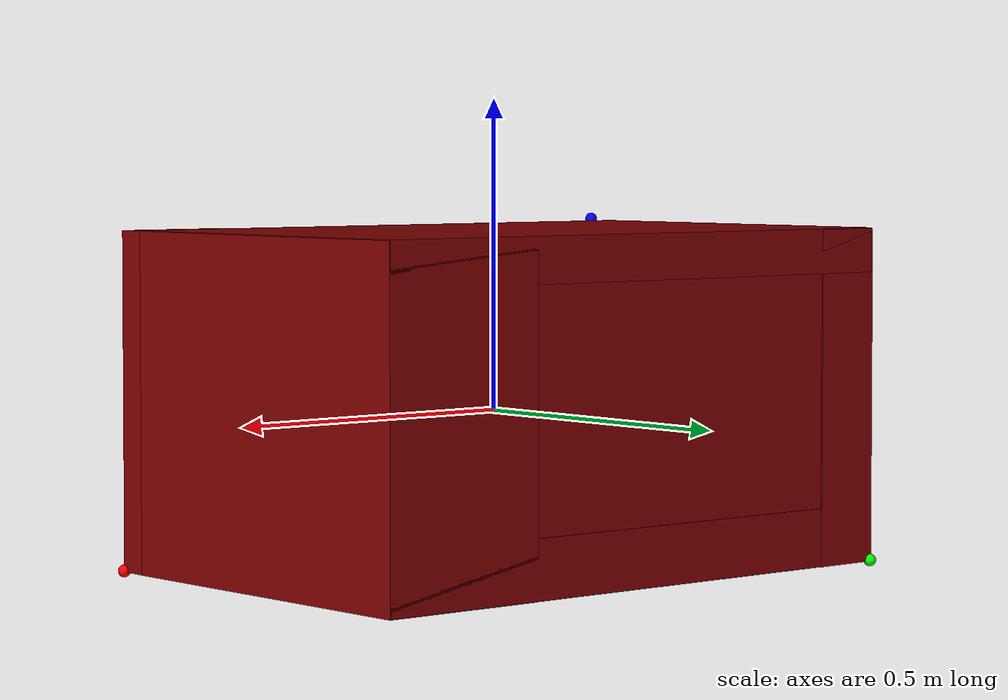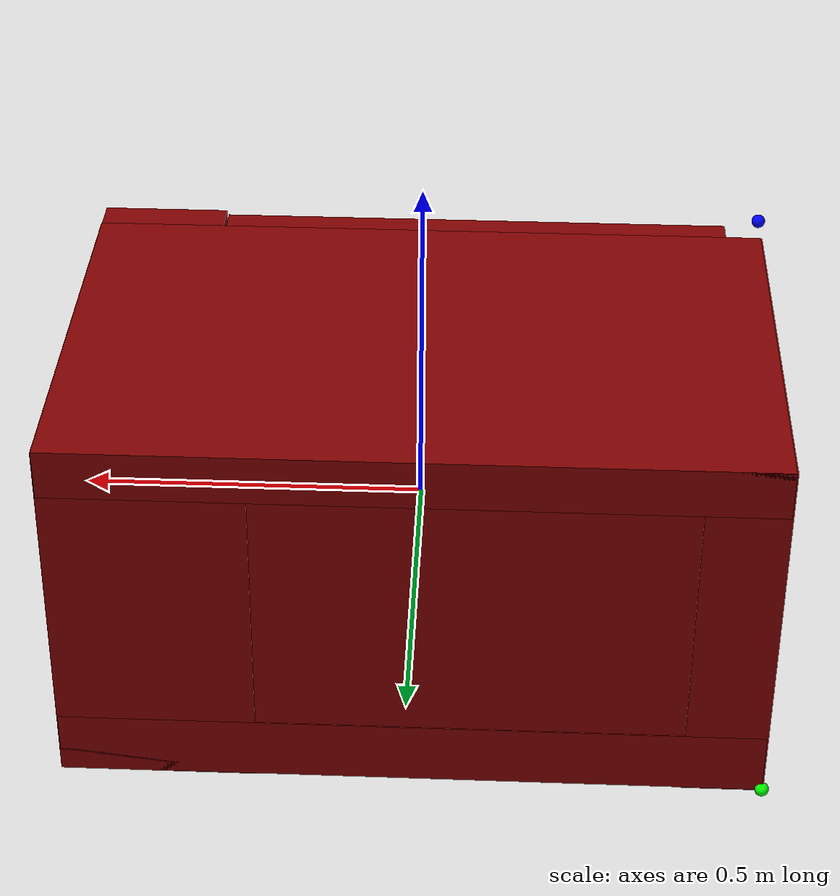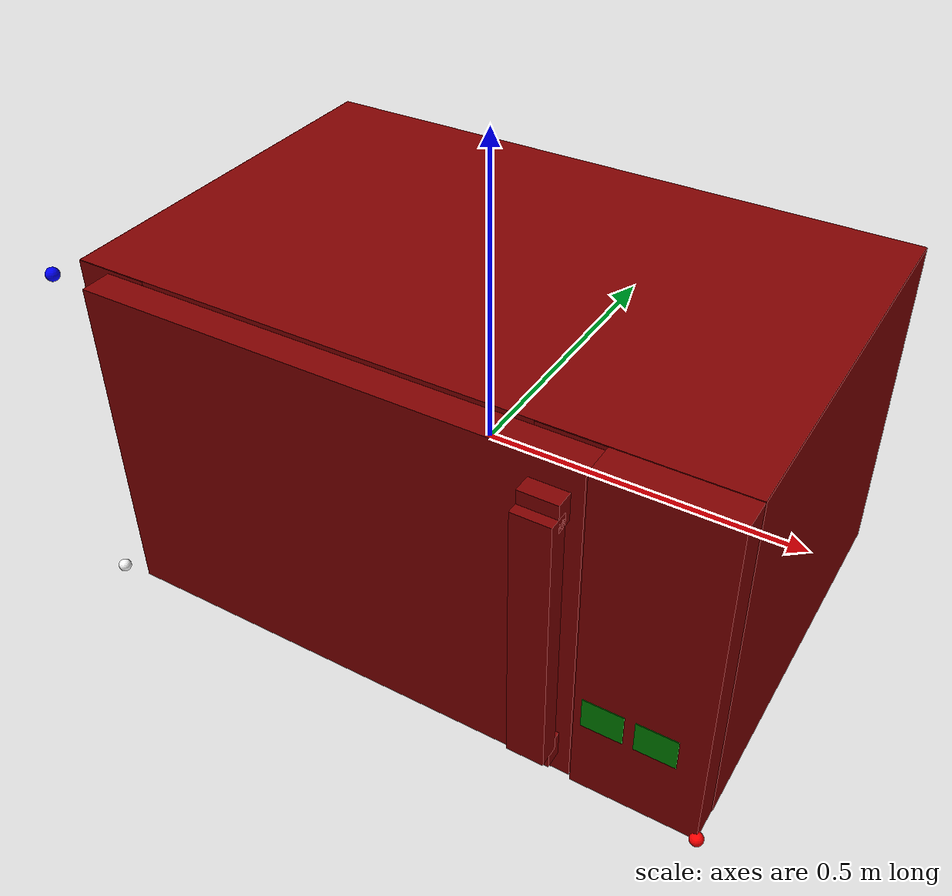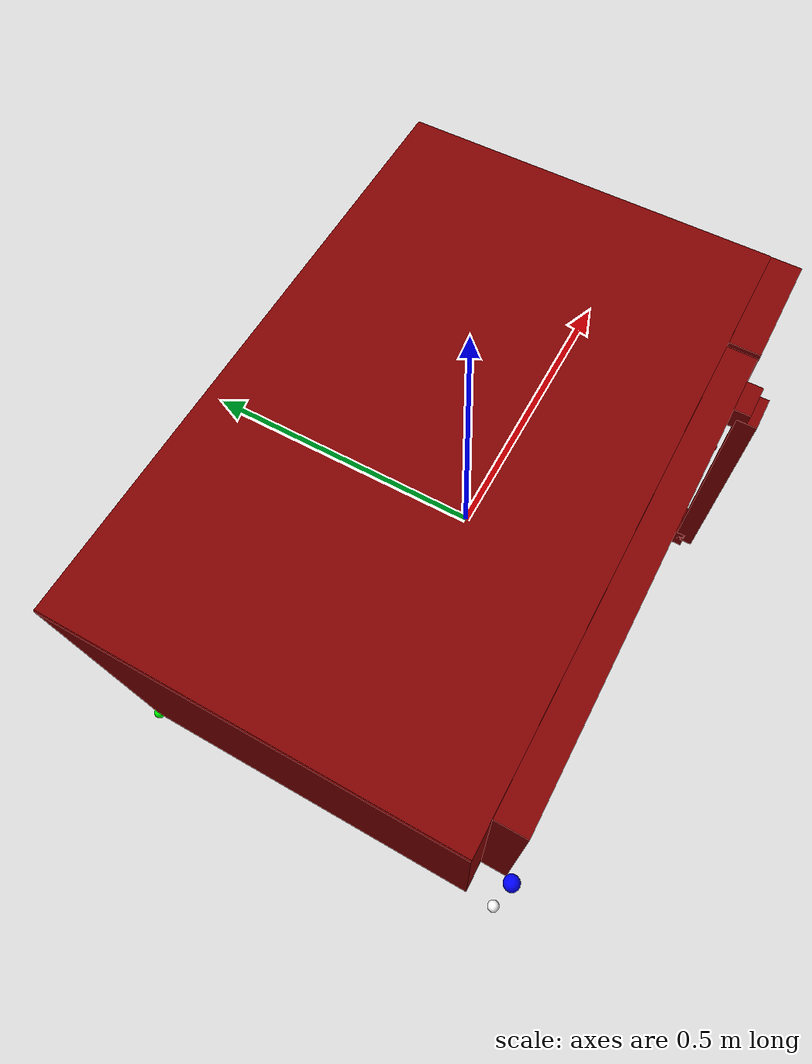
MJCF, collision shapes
<mujoco model="model">
  <compiler angle="radian"/>
  <asset>
    <texture type="2d" name="image0" file="visuals/image0.png"/>
    <texture type="2d" name="image2" file="visuals/image2.png"/>
    <texture type="2d" name="image4" file="visuals/image4.png"/>
    <texture type="2d" name="image3" file="visuals/image3.png"/>
    <material name="Back" texture="image0" specular="0.5" shininess="0.25"/>
    <material name="Body" specular="0.5" shininess="0.618999084" rgba="0.157434 0.157434 0.157434 1.000000"/>
    <material name="Body.001" texture="image2" specular="0.5" shininess="0.618999084"/>
    <material name="Front_Metal_Frame" texture="image4" specular="0.5" shininess="0.25"/>
    <material name="Glass" specular="0.5" shininess="0.0" rgba="1.000000 1.000000 1.000000 0.250000"/>
    <material name="Hold" specular="0.5" shininess="0.25" rgba="0.000000 0.000000 0.000000 1.000000"/>
    <material name="Inside_Metal" specular="0.5" shininess="0.25" rgba="0.800000 0.800000 0.800000 1.000000"/>
    <material name="NumPad" texture="image3" specular="0.5" shininess="0.393471375"/>
    <material name="NumPad_-_light_up" texture="image3" specular="0.5" shininess="0.36"/>
    <material name="Rubber_Legs" specular="0.5" shininess="0.10948291" rgba="0.000000 0.000000 0.000000 1.000000"/>
    <material name="Transp" specular="0.5" shininess="0.25" rgba="0.800000 0.800000 0.800000 0.250000"/>
    <mesh file="visuals/model_0.obj" name="model_0_vis" scale="1 1 1"/>
    <mesh file="visuals/model_1.obj" name="model_1_vis" scale="1 1 1"/>
    <mesh file="visuals/model_2.obj" name="model_2_vis" scale="1 1 1"/>
    <mesh file="visuals/model_3.obj" name="model_3_vis" scale="1 1 1"/>
    <mesh file="visuals/model_4.obj" name="model_4_vis" scale="1 1 1"/>
    <mesh file="visuals/model_5.obj" name="model_5_vis" scale="1 1 1"/>
    <mesh file="visuals/model_6.obj" name="model_6_vis" scale="1 1 1"/>
    <mesh file="visuals/model_7.obj" name="model_7_vis" scale="1 1 1"/>
    <mesh file="visuals/model_8.obj" name="model_8_vis" scale="1 1 1"/>
    <mesh file="visuals/model_9.obj" name="model_9_vis" scale="1 1 1"/>
    <mesh file="visuals/model_10.obj" name="model_10_vis" scale="1 1 1"/>
    <material name="Door_Glass" specular="0.5" shininess="1.0" rgba="0.200000 0.200000 0.200000 0.80000"/>
    <material name="Door_wire" specular="0.5" shininess="0.152312714" rgba="0.800000 0.800000 0.800000 0.2"/>
    <mesh file="visuals/door_0.obj" name="door_0_vis" scale="1 1 1"/>
    <mesh file="visuals/door_1.obj" name="door_1_vis" scale="1 1 1"/>
    <mesh file="visuals/door_2.obj" name="door_2_vis" scale="1 1 1"/>
    <mesh file="visuals/door_3.obj" name="door_3_vis" scale="1 1 1"/>
    <mesh file="visuals/door_4.obj" name="door_4_vis" scale="1 1 1"/>
    <mesh file="visuals/door_5.obj" name="door_5_vis" scale="1 1 1"/>
  </asset>
  <default>
    <default class="visual">
      <geom conaffinity="0" contype="0" group="1" type="mesh"/>
    </default>
    <default class="collision">
      <geom group="0" rgba="0.5 0 0 0.5"/>
    </default>
  </default>
  <worldbody>
    <body>
      <body name="object">
        <geom solimp="0.998 0.998 0.001" solref="0.001 1" density="100" friction="0.95 0.3 0.1" type="mesh" mesh="model_0_vis" material="Hold" class="visual"/>
        <geom solimp="0.998 0.998 0.001" solref="0.001 1" density="100" friction="0.95 0.3 0.1" type="mesh" mesh="model_1_vis" material="Glass" class="visual"/>
        <geom solimp="0.998 0.998 0.001" solref="0.001 1" density="100" friction="0.95 0.3 0.1" type="mesh" mesh="model_2_vis" material="Front_Metal_Frame" class="visual"/>
        <geom solimp="0.998 0.998 0.001" solref="0.001 1" density="100" friction="0.95 0.3 0.1" type="mesh" mesh="model_3_vis" material="NumPad_-_light_up" class="visual" />
        <geom solimp="0.998 0.998 0.001" solref="0.001 1" density="100" friction="0.95 0.3 0.1" type="mesh" mesh="model_4_vis" material="Transp" class="visual" />
        <geom solimp="0.998 0.998 0.001" solref="0.001 1" density="100" friction="0.95 0.3 0.1" type="mesh" mesh="model_5_vis" material="NumPad" class="visual"/>
        <geom solimp="0.998 0.998 0.001" solref="0.001 1" density="100" friction="0.95 0.3 0.1" type="mesh" mesh="model_6_vis" material="Inside_Metal" class="visual"/>
        <geom solimp="0.998 0.998 0.001" solref="0.001 1" density="100" friction="0.95 0.3 0.1" type="mesh" mesh="model_7_vis" material="Rubber_Legs" class="visual"/>
        <geom solimp="0.998 0.998 0.001" solref="0.001 1" density="100" friction="0.95 0.3 0.1" type="mesh" mesh="model_8_vis" material="Body.001" class="visual"/>
        <geom solimp="0.998 0.998 0.001" solref="0.001 1" density="100" friction="0.95 0.3 0.1" type="mesh" mesh="model_9_vis" material="Body" class="visual"/>
        <geom solimp="0.998 0.998 0.001" solref="0.001 1" density="100" friction="0.95 0.3 0.1" type="mesh" mesh="model_10_vis" material="Back" class="visual"/>
        <!-- Back Wall -->
        <geom class="collision" type="box" pos="0 0.335 0.02" size="0.5 0.023 0.272"/>
        <!-- Floor -->
        <geom class="collision" type="box" pos="0 0.045 -0.204" size="0.5 0.315 0.047"/>
        <!-- Top -->
        <geom class="collision" type="box" pos="0 0.045 0.257" size="0.5 0.315 0.036"/>
        <!-- Left Wall-->
        <geom class="collision" type="box" pos="-0.444 0.045 0.02" size="0.058 0.315 0.272"/>
        <!-- Right Wall-->
        <geom class="collision" type="box" pos="0.36 0.045 0.02" size="0.141 0.315 0.272"/>
        <!-- Keypad -->
        <geom class="collision" type="box" pos="0.407 -0.295 0.02" size="0.093 0.025 0.272"/>
        <!-- start/stop buttons -->
        <geom class="collision" type="box" pos="0.43 -0.295 -0.105" size="0.03 0.026 0.025" name="start_button" rgba="0.0 0.5 0 0.5"/>
        <geom class="collision" type="box" pos="0.355 -0.295 -0.105" size="0.03 0.026 0.025" name="stop_button" rgba="0.0 0.5 0 0.5"/>
        <geom class="collision" type="cylinder" pos="-0.09 0.05 -0.16" size="0.25 0.005" rgba="0 1 0 0.5" name="tray"/>
        <!-- Fix hole next to keypad -->
        <geom class="visual" type="box" pos="0.294 -0.2669 0.0258" size="0.02 0.003 0.2582" material="Inside_Metal"/>
        <body name="door">
          <joint axis="0 0 1" limited="true" name="microjoint" range="-1.57 0" damping="2" frictionloss="2" armature=".01" pos="-0.475 -0.3015 0" ref="0"/>
          <geom solimp="0.998 0.998 0.001" solref="0.001 1" density="100" friction="0.95 0.3 0.1" type="mesh" mesh="door_0_vis" material="Door_Glass" class="visual" />
          <geom solimp="0.998 0.998 0.001" solref="0.001 1" density="100" friction="0.95 0.3 0.1" type="mesh" mesh="door_1_vis" material="NumPad" class="visual"/>
          <geom solimp="0.998 0.998 0.001" solref="0.001 1" density="100" friction="0.95 0.3 0.1" type="mesh" mesh="door_2_vis" material="Door_wire" class="visual" />
          <geom solimp="0.998 0.998 0.001" solref="0.001 1" density="100" friction="0.95 0.3 0.1" type="mesh" mesh="door_3_vis" material="Body" class="visual"/>
          <geom solimp="0.998 0.998 0.001" solref="0.001 1" density="100" friction="0.95 0.3 0.1" type="mesh" mesh="door_4_vis" material="Front_Metal_Frame" class="visual"/>
          <geom solimp="0.998 0.998 0.001" solref="0.001 1" density="100" friction="0.95 0.3 0.1" type="mesh" mesh="door_5_vis" material="Hold" class="visual"/>
          <!-- Door -->
          <geom class="collision" type="box" pos="-0.069 -0.294 0.02" size="0.38 0.024 0.266"/>
          <!-- Handle Top -->
          <geom class="collision" type="box" pos="0.2655 -0.325 0.23" size="0.028 0.02 0.021"/>
          <!-- Handle Bottom -->
          <geom class="collision" type="box" pos="0.2655 -0.325 -0.19" size="0.028 0.02 0.021"/>
          <!-- Handle Main -->
          <geom class="collision" type="box" pos="0.2655 -0.345 0.02" size="0.028 0.016 0.21" name="door_handle"/>
          <!-- door sites -->
          <site rgba="1 0 0 0" size="0.005" pos="-0.075 -0.31 0.01" name="door_p1"/>
          <site rgba="0 1 0 0" size="0.005" pos="-0.025 -0.31 0.01" name="door_p2"/>
          <site rgba="0 0 1 0" size="0.005" pos="-0.075 -0.31 0.06" name="door_p3"/>
        </body>
        <!-- exterior bounding box points -->
        <site rgba="1 1 1 1" size="0.01" pos="-0.5 -0.32 -0.25" name="ext_p0"/>
        <site rgba="1 0 0 1" size="0.01" pos="0.5 -0.32 -0.25" name="ext_px"/>
        <site rgba="0 1 0 1" size="0.01" pos="-0.5 0.36 -0.25" name="ext_py"/>
        <site rgba="0 0 1 1" size="0.01" pos="-0.5 -0.32 0.295" name="ext_pz"/>
        <!-- interior bounding box points -->
        <site rgba="0.5 0.5 0.5 1" size="0.01" pos="-0.388 -0.26 -0.155" name="int_p0"/>
        <site rgba="1 1 0 1" size="0.01" pos="0.22 -0.26 -0.155" name="int_px"/>
        <site rgba="0 1 1 1" size="0.01" pos="-0.388 0.3 -0.155" name="int_py"/>
        <site rgba="1 0 1 1" size="0.01" pos="-0.388 -0.26 0.22" name="int_pz"/>
      </body>
    </body>
  </worldbody>
</mujoco>
